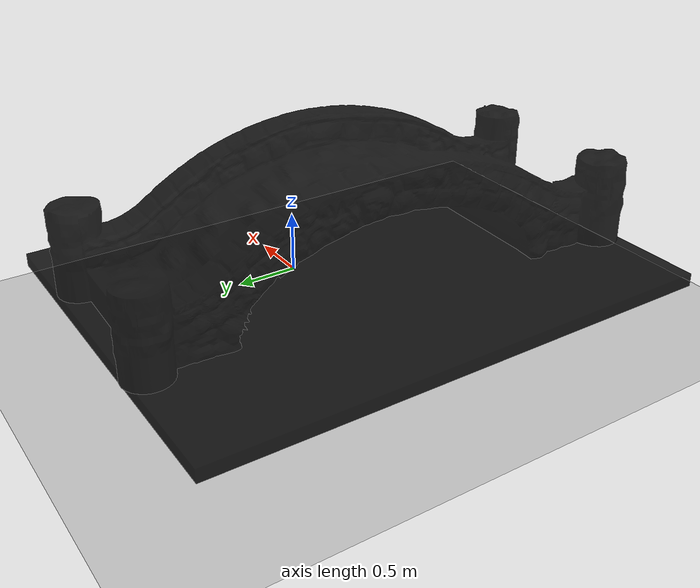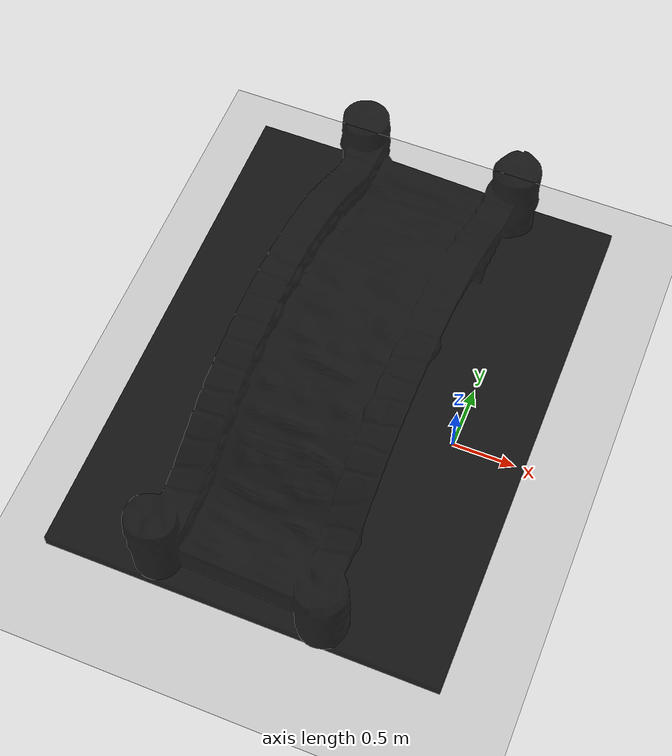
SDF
<sdf version="1.6">
 <world name="default">
  <light name="sun" type="directional">
   <pose>0 0 10 0 -0 0</pose>
   <diffuse>0.8 0.8 0.8 1</diffuse>
   <specular>0.1 0.1 0.1 1</specular>
   <attenuation>
    <range>1000</range>
    <constant>0.9</constant>
    <linear>0.01</linear>
    <quadratic>0.001</quadratic>
   </attenuation>
   <direction>-0.5 0.5 -1</direction>
  </light>
  <scene><ambient>0.4 0.4 0.4 1</ambient><background>0.7 0.7 0.7 1</background><shadows>1</shadows></scene>
  <gravity>0 0 -9.8</gravity>
  <magnetic_field>6e-06 2.3e-05 -4.2e-05</magnetic_field>
  <atmosphere type="adiabatic"/>
  <physics name="default_physics" default="0" type="ode">
   <max_step_size>0.001</max_step_size>
   <real_time_factor>1</real_time_factor>
   <real_time_update_rate>1000</real_time_update_rate>
  </physics>
  <model name="ground_plane">
   <static>1</static>
   <link name="link">
    <collision name="collision">
     <geometry><plane><normal>0 0 1</normal><size>100 100</size></plane></geometry>
     <surface>
      <friction><ode><mu>100</mu><mu2>50</mu2><slip1>1110.0</slip1><slip2>1110.0</slip2></ode></friction>
     </surface>
    </collision>
    <visual name="visual">
     <cast_shadows>0</cast_shadows>
     <geometry><plane><normal>0 0 1</normal><size>100 100</size></plane></geometry>
     <material>
      <script><uri>file://media/materials/scripts/gazebo.material</uri><name>Gazebo/Grey</name></script>
     </material>
    </visual>
   </link>
  </model>
  <model name="box">
   <pose>-0.9 0 0.4 0 0 0</pose>
   <link name="link">
    <inertial><mass>100</mass></inertial>
    <collision name="collision">
     <geometry><box><size>3 4 0.1</size></box></geometry>
     <surface>
      <friction><ode><mu>0.2</mu><mu2>0.2</mu2></ode></friction>
      <contact><ode><min_depth>0.05</min_depth><kp>1e7</kp></ode></contact>
     </surface>
    </collision>
    <visual name="visual">
     <geometry><box><size>3 4 0.1</size></box></geometry>
     <transparency>0.15</transparency>
     <material><ambient>0 0 0 1</ambient><emissive>0 0 0 1</emissive></material>
    </visual>
   </link>
  </model>
  <model name="bridge">
   <pose>-0.9 0 0.462 0 0 1.57</pose>
   <link name="link">
    <inertial><mass>30</mass></inertial>
    <collision name="collision">
     <geometry>
      <mesh>
       <uri>/home/ros_match/catkin_ws/src/multi_robot_system/multi_robot_launcher/worlds/models/Paige_Creek_Bridge.stl</uri>
       <scale>0.06 0.06 0.06</scale>
      </mesh>
     </geometry>
     <surface>
      <friction><ode><mu>0.2</mu><mu2>0.2</mu2></ode></friction>
      <contact><ode><min_depth>0.05</min_depth><kp>1e7</kp></ode></contact>
     </surface>
    </collision>
    <visual name="visual">
     <geometry>
      <mesh>
       <uri>/home/ros_match/catkin_ws/src/multi_robot_system/multi_robot_launcher/worlds/models/Paige_Creek_Bridge.stl</uri>
       <scale>0.06 0.06 0.06</scale>
      </mesh>
     </geometry>
     <transparency>0.15</transparency>
     <material><ambient>0 0 0 1</ambient><emissive>0 0 0 1</emissive></material>
    </visual>
   </link>
  </model>
  <spherical_coordinates>
   <surface_model>EARTH_WGS84</surface_model>
   <latitude_deg>0</latitude_deg>
   <longitude_deg>0</longitude_deg>
   <elevation>0</elevation>
   <heading_deg>0</heading_deg>
  </spherical_coordinates>
 </world>
</sdf>
